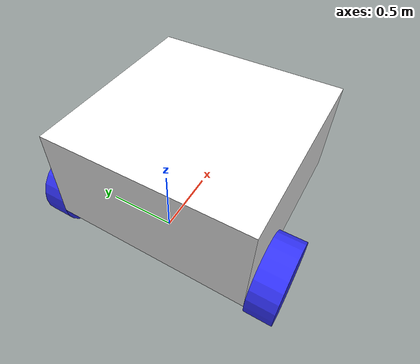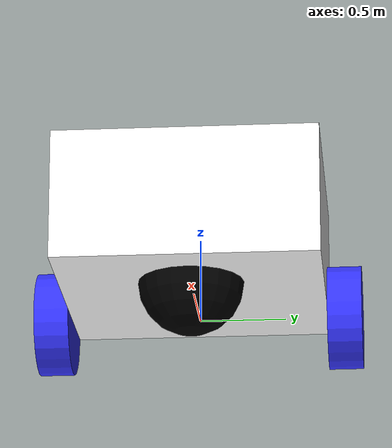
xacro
<?xml version="1.0"?>
<robot xmlns:xacro="http://www.ros.org/wiki/xacro">

    <!-- Materials that are gonna be used for the robot -->
    <material name="white">
        <color rgba="1 1 1 1" />
    </material>

    <material name="orange">
        <color rgba="1 0.3 0.1 1"/>
    </material>

    <material name="blue">
        <color rgba="0.2 0.2 1 1"/>
    </material>

    <material name="black">
        <color rgba="0 0 0 1"/>
    </material>

    <material name="red">
        <color rgba="1 0 0 1"/>
    </material>

    <xacro:property name="base_width" value="1.5"/>
    <xacro:property name="base_length" value="1.5"/>
    <xacro:property name="base_height" value="0.75"/>

    <!-- base_link -->
     <link name="base_link">

    </link>

    <!-- Base footprint joint -->
    <joint name="base_footprint_joint" type="fixed">
        <parent link="base_link"/>
        <child link="base_footprint"/>
        <origin xyz="0.0 0.0 0.0" rpy="0.0 0.0 0.0"/>
    </joint>

    <!-- Base footprint link -->
    <link name="base_footprint">
    </link>

    <!-- CHASSIS LINK -->

    <joint name="chassis_joint" type="fixed">
        <parent link="base_link"/>
        <child link="chassis"/>
        <origin xyz="-0.3 0 0" rpy="0.0 0.0 0.0"/>
    </joint>

    <link name="chassis">
        <visual>
            <origin xyz="0.75 0 0.375"/>
            <geometry>
                <box size="${base_length} ${base_width} ${base_height}"/>
            </geometry>
            <material name="white"/>
        </visual>
        <collision>
            <origin xyz="0.75 0 0.375"/>
            <geometry>
                <box size="${base_length} ${base_width} ${base_height}"/>
            </geometry>
        </collision>
        <xacro:inertial_box mass="0.5" x="1.5" y="1.5" z="0.75">
            <origin xyz="0.75 0 0.375" rpy="0 0 0"/>
        </xacro:inertial_box>

    </link>
    <!-- left wheel -->
     <joint name="left_wheel_joint" type="continuous">
        <origin xyz="0.0 0.85 0.0" rpy="-1.57 0.0 0.0"/>
        <parent link="base_link"/>
        <child link="left_wheel"/>
        <axis xyz="0.0 0.0 1.0"/>

    </joint>
    <!-- left_wheel link-->
    <link name="left_wheel">
        <visual>
            <geometry>
                <cylinder radius="0.3" length="0.20"/>
            </geometry>
            <material name="blue"/>
        </visual>
        <collision>
            <geometry>
                <cylinder radius="0.3" length="0.20"/>
            </geometry>
        </collision>

        <xacro:inertial_cylinder mass="0.1" length="0.2" radius="0.3">
            <origin xyz="0 0 0" rpy="0 0 0"/>
        </xacro:inertial_cylinder>

    </link>

    <gazebo reference="left_wheel">
        <material>Gazebo/Blue</material>
    </gazebo>

    <joint name="right_wheel_joint" type="continuous">
        <origin xyz="0.0 -0.85 0.0" rpy="1.57 0.0 0.0"/>
        <parent link="base_link"/>
        <child link="right_wheel"/>
        <axis xyz="0.0 0.0 -1.0"/>

    </joint>
    <!-- right_wheel link-->
    <link name="right_wheel">
        <visual>
            <geometry>
                <cylinder radius="0.3" length="0.20"/>
            </geometry>
            <material name="blue"/>
        </visual>
        <collision>
             <geometry>
                <cylinder radius="0.3" length="0.20"/>
            </geometry>
        </collision>
        <xacro:inertial_cylinder mass="0.1" length="0.2" radius="0.3">
            <origin xyz="0 0 0" rpy="0 0 0"/>
        </xacro:inertial_cylinder>
    </link>

    <gazebo reference="right_wheel">
        <material>Gazebo/Blue</material>
    </gazebo>

    <joint name="caster_wheel_joint" type="fixed">
        <parent link="chassis"/>
        <child link="caster_wheel"/>
        <origin xyz="1.0 0 0"/>
    </joint>

    <link name="caster_wheel">
        <visual>
            <geometry>
                <sphere radius="0.3"/>
            </geometry>
            <material name="black"/>
        </visual>
        <collision>
            <geometry>
                <sphere radius="0.3"/>
            </geometry>
        </collision>
        <xacro:inertial_sphere mass="0.1" radius="0.3">
            <origin xyz="0 0 0" rpy="0 0 0"/>
        </xacro:inertial_sphere>
    </link>

    <gazebo reference="caster_wheel">
        <material>Gazebo/Black</material>
        <!-- fixing the friction for the caster wheel-->
        <mu1 value="0.001"/>
        <mu2 value="0.001"/>
    </gazebo>

</robot>
